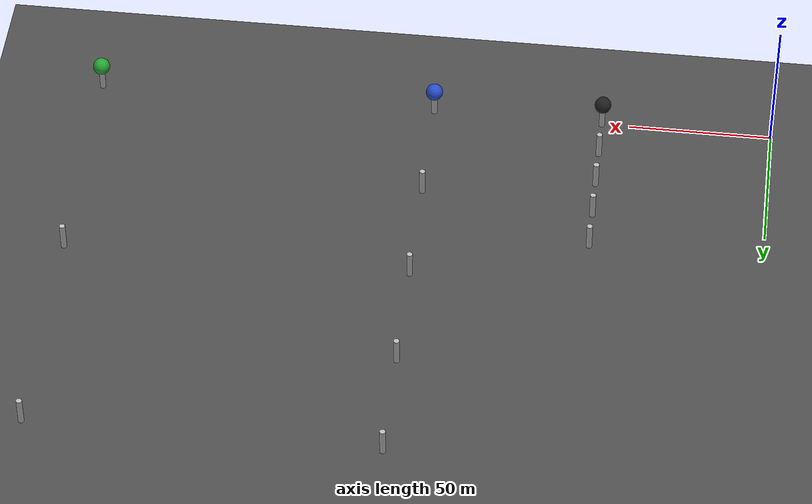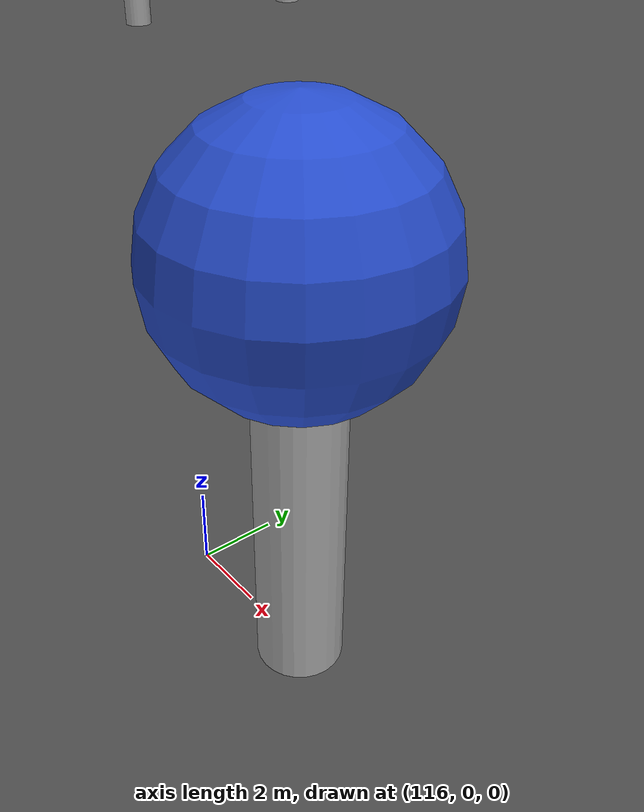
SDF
<sdf version="1.5">
 <world name="default">
  <scene><grid>false</grid><sky><clouds><speed>10</speed></clouds></sky></scene>
  <include><uri>model://sun</uri></include>
  <include><uri>model://columns</uri></include>
  <include><uri>model://hangar4</uri></include>
 </world>
</sdf>

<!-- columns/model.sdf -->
<sdf version="1.5">
  <model name="columns">
    <static>true</static>

    <link name="black">
      <visual name="visual">
        <cast_shadows>0</cast_shadows>
        <pose>60 0 10 0 0 0</pose>
        <geometry>
          <sphere><radius>3.0</radius></sphere>
        </geometry>
        <material>
          <script>
            <name>Gazebo/Black</name>
          </script>
        </material>
      </visual>
    </link>
    <include>
      <name>column11</name>
      <pose>60 0 0 0 0 0</pose>
      <uri>model://column</uri>
    </include>
    <include>
      <name>column12</name>
      <pose>60 15 0 0 0 0</pose>
      <uri>model://column</uri>
    </include>
    <include>
      <name>column13</name>
      <pose>60 30 0 0 0 0</pose>
      <uri>model://column</uri>
    </include>
    <include>
      <name>column14</name>
      <pose>60 45 0 0 0 0</pose>
      <uri>model://column</uri>
    </include>
    <include>
      <name>column15</name>
      <pose>60 60 0 0 0 0</pose>
      <uri>model://column</uri>
    </include>

    <link name="blue">
      <visual name="visual">
        <cast_shadows>0</cast_shadows>
        <pose>120 0 10 0 0 0</pose>
        <geometry>
          <sphere><radius>3.0</radius></sphere>
        </geometry>
        <material>
          <script>
            <name>Gazebo/Blue</name>
          </script>
        </material>
      </visual>
    </link>

    <include>
      <name>column21</name>
      <pose>120 0 0 0 0 0</pose>
      <uri>model://column</uri>
    </include>
    <include>
      <name>column22</name>
      <pose>120 40 0 0 0 0</pose>
      <uri>model://column</uri>
    </include>
    <include>
      <name>column23</name>
      <pose>120 80 0 0 0 0</pose>
      <uri>model://column</uri>
    </include>
    <include>
      <name>column24</name>
      <pose>120 120 0 0 0 0</pose>
      <uri>model://column</uri>
    </include>
    <include>
      <name>column25</name>
      <pose>120 160 0 0 0 0</pose>
      <uri>model://column</uri>
    </include>

    <link name="green">
      <visual name="visual">
        <cast_shadows>0</cast_shadows>
        <pose>240 0 10 0 0 0</pose>
        <geometry>
          <sphere><radius>3.0</radius></sphere>
        </geometry>
        <material>
          <script>
            <name>Gazebo/Green</name>
          </script>
        </material>
      </visual>
    </link>
    <include>
      <name>column26</name>
      <pose>240 0 0 0 0 0</pose>
      <uri>model://column</uri>
    </include>
    <include>
      <name>column27</name>
      <pose>240 80 0 0 0 0</pose>
      <uri>model://column</uri>
    </include>
    <include>
      <name>column28</name>
      <pose>240 160 0 0 0 0</pose>
      <uri>model://column</uri>
    </include>
  </model>
</sdf>

<!-- vim: set et fenc=utf-8 ft=xml ff=unix sts=0 sw=2 ts=2 : -->

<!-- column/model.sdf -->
<sdf version="1.5">
  <model name="column">
    <static>true</static>
    <link name="link">
      <pose>0 0 5 0 0 0</pose>
      <collision name="collision">
        <geometry>
			<cylinder>
				<radius>1</radius>
				<length>10</length>
			</cylinder>
        </geometry>
      </collision>
      <visual name="visual">
        <geometry>
			<cylinder>
				<radius>1</radius>
				<length>10</length>
			</cylinder>
        </geometry>
        <material>
          <script>
            <uri>model://column/materials/scripts</uri>
            <uri>model://column/materials/textures</uri>
            <name>vrc/granite</name>
          </script>
        </material>
      </visual>
    </link>
  </model>
</sdf>

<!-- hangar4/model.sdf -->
<sdf version="1.5">
  <model name="hangar4">
    <static>true</static>
    <link name="link">
      <collision name="collision">
        <geometry>
          <box>
            <size>1000 1000 .1</size>
          </box>
        </geometry>
      </collision>
      <visual name="visual">
        <cast_shadows>false</cast_shadows>
        <geometry>
          <box>
            <size>1000 1000 .1</size>
          </box>
        </geometry>
        <material>
          <script>
            <uri>model://hangar4/materials/scripts</uri>
            <uri>model://hangar4/materials/textures</uri>
            <name>vrc/asphalt</name>
          </script>
        </material>
      </visual>
    </link>
  </model>
</sdf>
